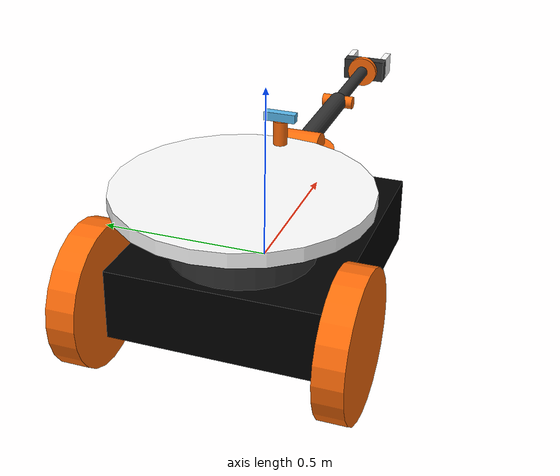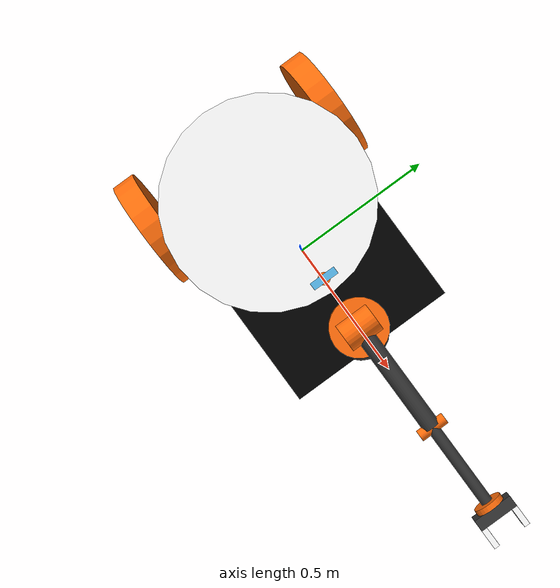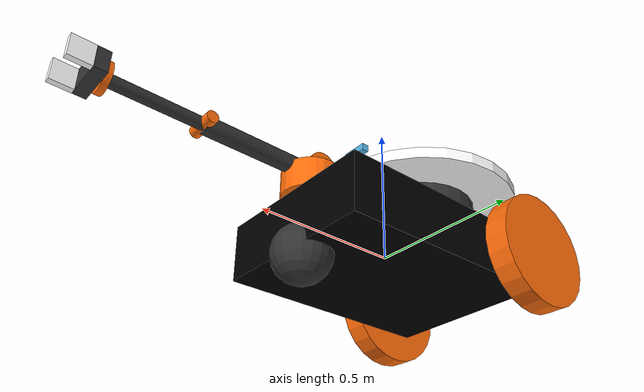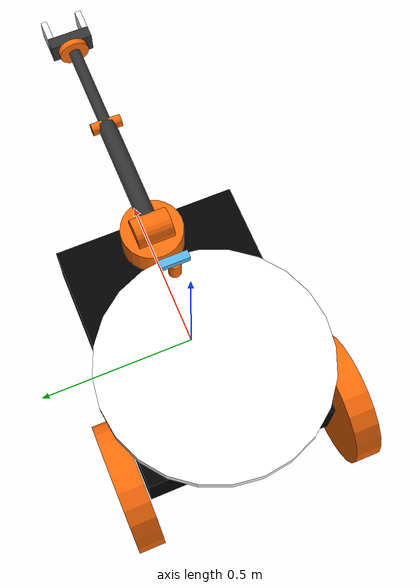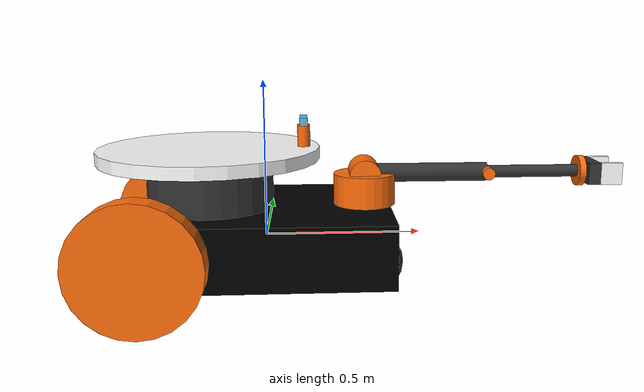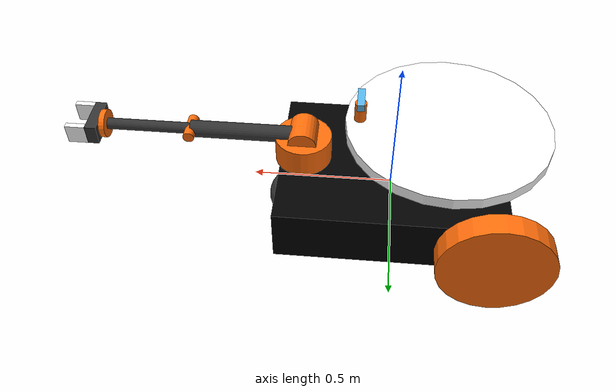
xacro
<?xml version="1.0"?>

<robot name="triwheeler" xmlns:xacro="https://www.ros.org/wiki/xacro" >

    <!-- Included URDF Files -->
    <xacro:include filename="$(find simbot_description)/urdf/triwheeler.urdf.xacro" />

    <!-- Instantiate triwheeler_base_macro once (has no parameters atm) -->
    <xacro:triwheeler_base_macro />

    <!-- RGB-D camera -->
    <xacro:include filename="$(find simbot_description)/urdf/rgbd_camera.urdf.xacro" />
    <xacro:rgbd_camera parent="plate">
        <origin xyz="${6*plate_r/7} 0.0 ${plate_l/2+holder_l/2}" rpy="0 0 0"/>
    </xacro:rgbd_camera>

    <xacro:include filename="$(find simbot_description)/urdf/manipulator.urdf.xacro" />
    <xacro:manipulator parent="chassis">
        <origin xyz="${2*chassis_x/5} 0.0 ${chassis_z/2+shoulder_0_l/2}" rpy="0 0 0"/>
    </xacro:manipulator>

</robot>

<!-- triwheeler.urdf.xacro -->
<robot xmlns:xacro="https://www.ros.org/wiki/xacro" >

    <!-- constants for robot dimensions -->
    <xacro:property name="PI" value="3.1415926535897931"/>
    <!-- properties of chassis link -->
    <xacro:property name="chassis_x" value="0.8" />
    <xacro:property name="chassis_y" value="0.6" />
    <xacro:property name="chassis_z" value="0.2" />
    <xacro:property name="chassis_m" value="4" />
    <!-- properties of plate link -->
    <xacro:property name="plate_r" value="0.35"/>
    <xacro:property name="plate_l" value="0.04"/>
    <xacro:property name="plate_m" value="0.2"/>
    <!-- properties of plate support link -->
    <xacro:property name="support_r" value="0.2"/>
    <xacro:property name="support_l" value="0.15"/>
    <xacro:property name="support_m" value="0.8"/>
    <!-- properties of link_caster -->
    <xacro:property name="caster_r" value="0.1"/>
    <xacro:property name="caster_m" value="0.1"/>
    <!-- properties of wheel -->
    <xacro:property name="wheel_r" value="0.2"/>
    <xacro:property name="wheel_l" value="0.08"/>
    <xacro:property name="wheel_m" value="0.5"/>
    <!-- wheel mounting positions -->
    <xacro:property name="wheelbase" value="0.7" />
    <xacro:property name="track" value="0.7" />

    <!-- import all gazebo-customization elements, including gazebo colors -->
    <!-- import rviz colors -->
    <xacro:include filename="$(find simbot_description)/urdf/materials.urdf.xacro" />

    <!-- main triwheeler link -->
    <xacro:macro name="triwheeler_base_macro">
        <!-- chassis is the center of the robot's bottom plate -->
        <link name="chassis">
            <visual>
                <origin xyz="0 0 0" rpy="0 0 0" />
                <geometry>
                    <box size="${chassis_x} ${chassis_y} ${chassis_z}"/> />
                </geometry>
                <material name="black"/>
            </visual>
            <collision>
                <origin xyz="0 0 0" rpy="0 0 0" />
                <geometry>
                    <box size="${chassis_x} ${chassis_y} ${chassis_z}"/> />
                </geometry>
            </collision>
        </link>
        <!-- kdl does not support a root link with an inertia, create a dummy link only contains inertia of base_link -->
        <joint name="chassis-chassis_inertial" type="fixed">
            <origin xyz="0 0 0" rpy="0 0 0" />
            <parent link="chassis" />
            <child link="chassis_inertial" />
        </joint>
        <link name="chassis_inertial">
            <inertial>
                <mass value="${chassis_m}"/>
                <origin rpy="0 0 0" xyz="0 0 0"/>
                <inertia ixx="${1/12*chassis_m*(chassis_y*chassis_y+chassis_z*chassis_z)}" ixy="0" ixz="0" iyy="${1/12*chassis_m*(chassis_z*chassis_z+chassis_x*chassis_x)}" iyz="0" izz="${1/12*chassis_m*(chassis_x*chassis_x+chassis_y*chassis_y)}"/>
            </inertial>
        </link>

        <!-- left wheel -->
        <joint name="$chassis-left_wheel" type="continuous">
            <origin xyz="-${wheelbase/2} ${track/2} 0" rpy="0 0 0" />
            <parent link="chassis"/>
            <child link="left_wheel"/>
            <axis xyz="0 1 0" rpy="0 0 0" />
        </joint>

        <link name="left_wheel">
            <visual>
                <origin rpy="${PI/2} 0 0" xyz="0 0 0"/>
                <geometry>
                    <cylinder length="${wheel_l}" radius="${wheel_r}"/>
                </geometry>
                <material name="orange"/>
            </visual>
            <collision>
                <origin rpy="${PI/2} 0 0" xyz="0 0 0" />
                <geometry>
                    <cylinder length="${wheel_l}" radius="${wheel_r}"/>
                </geometry>
            </collision>
            <inertial>
                <mass value="${wheel_m}"/>
                <origin rpy="${PI/2} 0 0" xyz="0 0 0"/>
                <inertia ixx="${1/12*wheel_m*(3*wheel_r*wheel_r+wheel_l*wheel_l)}" ixy="0" ixz="0" iyy="${1/12*wheel_m*(3*wheel_r*wheel_r+wheel_l*wheel_l)}" iyz="0" izz="${1/2*wheel_m*wheel_r*wheel_r}"/>
            </inertial>
        </link>

        <!-- right wheel -->
        <joint name="$chassis-right_wheel" type="continuous">
            <origin xyz="-${wheelbase/2} -${track/2} 0" rpy="0 0 0" />
            <parent link="chassis"/>
            <child link="right_wheel"/>
            <axis xyz="0 1 0" rpy="0 0 0" />
        </joint>

        <link name="right_wheel">
            <visual>
                <origin rpy="${PI/2} 0 0" xyz="0 0 0"/>
                <geometry>
                    <cylinder length="${wheel_l}" radius="${wheel_r}"/>
                </geometry>
                <material name="orange"/>
            </visual>
            <collision>
                <origin rpy="${PI/2} 0 0" xyz="0 0 0" />
                <geometry>
                    <cylinder length="${wheel_l}" radius="${wheel_r}"/>
                </geometry>
            </collision>
            <inertial>
                <mass value="${wheel_m}"/>
                <origin rpy="${PI/2} 0 0" xyz="0 0 0"/>
                <inertia ixx="${1/12*wheel_m*(3*wheel_r*wheel_r+wheel_l*wheel_l)}" ixy="0" ixz="0" iyy="${1/12*wheel_m*(3*wheel_r*wheel_r+wheel_l*wheel_l)}" iyz="0" izz="${1/2*wheel_m*wheel_r*wheel_r}"/>
            </inertial>
        </link>

        <!-- caster ball -->
        <joint name="joint_chassis_caster" type="fixed">
            <origin rpy="0 0 0" xyz="${wheelbase/2} 0 -${chassis_z/2}"/>
            <parent link="chassis"/>
            <child link="caster"/>
        </joint>

        <link name="caster">
            <visual>
                <origin rpy="0 0 0" xyz="0 0 0"/>
                <geometry>
                    <sphere radius="${caster_r}"/>
                </geometry>
                <material name="grey"/>
            </visual>
            <collision>
                <origin rpy=" 0 0 0" xyz="0 0 0"/>
                <geometry>
                    <sphere radius="${caster_r}"/>
                </geometry>
            </collision>
            <inertial>
                <mass value="${caster_m}"/>
                <origin rpy="0 0 0" xyz="0 0 0"/>
                <inertia ixx="${2/5*caster_m*caster_r*caster_r}" ixy="0" ixz="0" iyy="${2/5*caster_m*caster_r*caster_r}" iyz="0" izz="${2/5*caster_m*caster_r*caster_r}"/>
            </inertial>
        </link>

        <joint name="chassis-support" type="fixed">
            <origin rpy="0 0 0" xyz="-${wheelbase/4} 0 ${chassis_z/2+support_l/2}"/>
            <parent link="chassis"/>
            <child link="support"/>
        </joint>

        <link name="support">
            <visual>
                <origin rpy="0 0 0" xyz="0 0 0"/>
                <geometry>
                    <cylinder length="${support_l}" radius="${support_r}"/>
                </geometry>
                <material name="grey"/>
            </visual>
            <collision>
                <origin rpy="0 0 0" xyz="0 0 0" />
                <geometry>
                    <cylinder length="${support_l}" radius="${support_r}"/>
                </geometry>
            </collision>
            <inertial>
                <mass value="${support_m}"/>
                <origin rpy="0 0 0" xyz="0 0 0"/>
                <inertia ixx="${1/12*support_m*(3*support_r*support_r+support_l*support_l)}" ixy="0" ixz="0" iyy="${1/12*support_m*(3*support_r*support_r+support_l*support_l)}" iyz="0" izz="${1/2*support_m*support_r*support_r}"/>
            </inertial>
        </link>

        <joint name="support-plate" type="revolute">
            <origin rpy="0 0 0" xyz="0 0 ${support_l/2+plate_l/2}"/>
            <parent link="support"/>
            <child link="plate"/>
            <limit effort="0" lower="0" upper="0" velocity="0"/>
            <axis rpy="0 0 0" xyz="0 0 1"/>
        </joint>

        <link name="plate">
            <visual>
                <origin rpy="0 0 0" xyz="0 0 0"/>
                <geometry>
                    <cylinder length="${plate_l}" radius="${plate_r}"/>
                </geometry>
                <material name="white"/>
            </visual>
            <collision>
                <origin rpy="0 0 0" xyz="0 0 0" />
                <geometry>
                    <cylinder length="${plate_l}" radius="${plate_r}"/>
                </geometry>
            </collision>
            <inertial>
                <mass value="${plate_m}"/>
                <origin rpy="0 0 0" xyz="0 0 0"/>
                <inertia ixx="${1/12*plate_m*(3*plate_r*plate_r+plate_l*plate_l)}" ixy="0" ixz="0" iyy="${1/12*plate_m*(3*plate_r*plate_r+plate_l*plate_l)}" iyz="0" izz="${1/2*plate_m*plate_r*plate_r}"/>
            </inertial>
        </link>

        <joint name="chassis-imu" type="revolute">
            <origin rpy="0 0 0" xyz="${chassis_x/4} 0 ${chassis_z/2}"/>
            <parent link="chassis"/>
            <child link="imu"/>
            <limit lower="0" upper="0" effort="0" velocity="0"/>
            <axis xyz="0 0 1"/>
        </joint>
        <link name="imu"/>

        <transmission name="left_wheel-trans" type="simpletransmission">
            <type>transmission_interface/simpletransmission</type>
            <actuator name="left_wheel-motor">
                <mechanicalreduction>1</mechanicalreduction>
            </actuator>
            <joint name="chassis-left_wheel">
                <hardwareinterface>hardware_interface/velocityjointinterface</hardwareinterface>
            </joint>
        </transmission>

        <transmission name="right_wheel-trans" type="simpletransmission">
            <type>transmission_interface/simpletransmission</type>
            <actuator name="right_wheel-motor">
                <mechanicalreduction>1</mechanicalreduction>
            </actuator>
            <joint name="chassis-right_wheel">
                <hardwareinterface>hardware_interface/velocityjointinterface</hardwareinterface>
            </joint>
        </transmission>

        <gazebo reference="imu">
            <gravity>true</gravity>
            <sensor name="imu_sensor" type="imu">
                <always_on>true</always_on>
                <update_rate>100</update_rate>
                <visualize>true</visualize>
                <topic>__default_topic__</topic>
                <plugin filename="libgazebo_ros_imu_sensor.so" name="imu_plugin">
                    <topicName>imu</topicName>
                    <bodyName>imu_link</bodyName>
                    <updateRateHZ>10.0</updateRateHZ>
                    <gaussianNoise>0.0</gaussianNoise>
                    <xyzOffset>0 0 0</xyzOffset>
                    <rpyOffset>0 0 0</rpyOffset>
                    <frameName>imu_link</frameName>
                </plugin>
                <pose>0 0 0 0 0 0</pose>
            </sensor>
        </gazebo>

    </xacro:macro>

</robot>

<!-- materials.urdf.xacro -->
<robot>

  <material name="black">
    <color rgba="0.0 0.0 0.0 1.0"/>
  </material>

  <material name="blue">
    <color rgba="0.0 0.0 0.8 1.0"/>
  </material>

  <material name="green">
    <color rgba="0.0 0.8 0.0 1.0"/>
  </material>

  <material name="grey">
    <color rgba="0.2 0.2 0.2 1.0"/>
  </material>

  <material name="orange">
    <color rgba="${255/255} ${108/255} ${10/255} 1.0"/>
  </material>

  <material name="brown">
    <color rgba="${222/255} ${207/255} ${195/255} 1.0"/>
  </material>

  <material name="red">
    <color rgba="0.8 0.0 0.0 1.0"/>
  </material>

  <material name="white">
    <color rgba="1.0 1.0 1.0 1.0"/>
  </material>

  <material name="uc_red">
    <color rgba="${224/255} ${1/255} ${34/255} 1.0"/>
  </material>

  <material name="aluminum">
    <color rgba="0.5 0.5 0.5 1"/>
  </material>

</robot>

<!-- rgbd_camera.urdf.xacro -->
<robot xmlns:xacro="https://www.ros.org/wiki/xacro">
    <xacro:property name="M_PI" value="3.1415926535897931" />

    <xacro:property name="holder_mass" value="0.072"/>
    <xacro:property name="holder_r" value="0.02"/>
    <xacro:property name="holder_l" value="0.07"/>

    <xacro:property name="camera_width" value="0.09"/>
    <xacro:property name="camera_height" value="0.025"/>
    <xacro:property name="camera_depth" value="0.025"/>
    <xacro:property name="camera_mass" value="0.072"/>

    <xacro:macro name="rgbd_camera" params="parent *origin">
        <joint name="${parent}-camera_holder" type="revolute">
            <xacro:insert_block name="origin" />
            <parent link="${parent}"/>
            <child link="camera_holder"/>
            <limit lower="${-M_PI/4}" upper="${M_PI/4}" effort="50" velocity="${M_PI}"/>
            <axis xyz="0 0 1"/>
        </joint>

        <link name="camera_holder">
            <visual>
                <origin rpy="0 0 0" xyz="0 0 0"/>
                <geometry>
                    <cylinder length="${holder_l}" radius="${holder_r}"/>
                </geometry>
                <material name="orange"/>
            </visual>
            <collision>
                <origin rpy="0 0 0" xyz="0 0 0" />
                <geometry>
                    <cylinder length="${holder_l}" radius="${holder_r}"/>
                </geometry>
            </collision>
            <inertial>
				<mass value="${holder_mass}" />
				<origin xyz="0 0 0" />
				<inertia ixx="${1/12*holder_mass*(3*holder_r*holder_r+holder_l*holder_l)}" ixy="0" ixz="0" iyy="${1/12*holder_mass*(3*holder_r*holder_r+holder_l*holder_l)}" iyz="0" izz="${1/2*holder_mass*holder_r*holder_r}"/>
			</inertial>
		</link>

        <joint name="camera_holder-camera_body" type="revolute">
            <origin rpy="0 0 0" xyz="0 0 ${holder_l/2+camera_height/2}"/>
            <parent link="camera_holder"/>
            <child link="camera_body"/>
            <limit lower="${-M_PI/6}" upper="${M_PI/12}" effort="50" velocity="${M_PI}"/>
            <axis xyz="0 1 0"/>
        </joint>

        <link name="camera_body">
			<visual>
				<origin xyz="0 0 0" rpy="0 0 0" />
				<geometry>
					<box size="${camera_depth} ${camera_width} ${camera_height}" />
				</geometry>
                <color rgba="0.5 0.5 0.5 1"/>
			</visual>
			<collision>
				<origin xyz="0 0 0" rpy="0 0 0" />
				<geometry>
                    <box size="${camera_depth} ${camera_width} ${camera_height}" />
				</geometry>
			</collision>
            <inertial>
				<mass value="${camera_mass}" />
				<origin xyz="0 0 0" />
				<inertia ixx="5.8083e-4" ixy="0" ixz="0" iyy="3.0833e-5" iyz="0" izz="5.9083e-4" />
			</inertial>
		</link>

        <joint name="camera_body-depth_frame" type="fixed">
            <origin xyz="${camera_depth/2} 0.0175 0.0" rpy="${-M_PI/2} 0 ${-M_PI/2}" />
            <parent link="camera_body" />
            <child link="camera_depth_frame"/>
        </joint>

        <link name="camera_depth_frame"/>

        <joint name="camera_body-depth_optical" type="fixed">
            <origin xyz="${camera_depth/2} 0.0175 0" rpy="0 0 0" />
            <parent link="camera_body" />
            <child link="camera_depth_optical"/>
        </joint>

        <link name="camera_depth_optical"/>

        <gazebo reference="camera_depth_optical">
            <sensor type="depth" name="camera">
                <update_rate>30</update_rate>
                <camera>
                    <horizontal_fov>${69.4 * M_PI/180.0}</horizontal_fov>
                    <image>
                        <format>B8G8R8</format>
                        <width>640</width>
                        <height>480</height>
                    </image>
                    <clip>
                        <near>0.3</near>
                        <far>10</far>
                    </clip>
                </camera>
                <plugin name="camera_controller" filename="libgazebo_ros_openni_kinect.so">
                    <cameraName>camera</cameraName>
                    <imageTopicName>/camera/color/image_raw</imageTopicName>
                    <cameraInfoTopicName>/camera/color/camera_info</cameraInfoTopicName>
                    <depthImageTopicName>/camera/depth/image_raw</depthImageTopicName>
                    <depthImageInfoTopicName>/camera/depth/camera_info</depthImageInfoTopicName>
                    <pointCloudTopicName>/camera/depth/points</pointCloudTopicName>
                    <frameName>camera</frameName>
                </plugin>
            </sensor>
        </gazebo>

    </xacro:macro>

</robot>

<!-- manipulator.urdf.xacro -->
<robot xmlns:xacro="https://www.ros.org/wiki/xacro">
    <xacro:property name="M_PI" value="3.1415926535897931" />

    <xacro:property name="shoulder_0_mass" value="2"/>
    <xacro:property name="shoulder_0_r" value="0.1"/>
    <xacro:property name="shoulder_0_l" value="0.1"/>

    <xacro:property name="shoulder_1_mass" value="0.4"/>
    <xacro:property name="shoulder_1_r" value="0.05"/>
    <xacro:property name="shoulder_1_l" value="0.12"/>

    <xacro:property name="upper_arm_mass" value="0.2"/>
    <xacro:property name="upper_arm_r" value="0.03"/>
    <xacro:property name="upper_arm_l" value="0.4"/>

    <xacro:property name="elbow_mass" value="0.2"/>
    <xacro:property name="elbow_r" value="0.02"/>
    <xacro:property name="elbow_l" value="0.1"/>

    <xacro:property name="lower_arm_mass" value="0.1"/>
    <xacro:property name="lower_arm_r" value="0.02"/>
    <xacro:property name="lower_arm_l" value="0.3"/>

    <xacro:property name="wrist_mass" value="0.1"/>
    <xacro:property name="wrist_r" value="0.05"/>
    <xacro:property name="wrist_l" value="0.02"/>

    <xacro:property name="gripper_mass" value="0.2"/>
    <xacro:property name="gripper_x" value="0.14"/>
    <xacro:property name="gripper_y" value="0.07"/>
    <xacro:property name="gripper_z" value="0.04"/>

    <xacro:property name="finger_mass" value="0.02"/>
    <xacro:property name="finger_x" value="0.02"/>
    <xacro:property name="finger_y" value="0.07"/>
    <xacro:property name="finger_z" value="0.07"/>

    <xacro:macro name="manipulator" params="parent name:=manipulator *origin">
        <joint name="${parent}-${name}_shoulder_0" type="revolute">
            <xacro:insert_block name="origin" />
            <parent link="${parent}"/>
            <child link="${name}_shoulder_0"/>
            <limit lower="${-19*M_PI/20}" upper="${19*M_PI/20}" effort="50" velocity="${M_PI}"/>
            <axis xyz="0 0 1"/>
        </joint>

        <link name="${name}_shoulder_0">
            <visual>
                <origin rpy="0 0 0" xyz="0 0 0"/>
                <geometry>
                    <cylinder length="${shoulder_0_l}" radius="${shoulder_0_r}"/>
                </geometry>
                <material name="orange"/>
            </visual>
            <collision>
                <origin rpy="0 0 0" xyz="0 0 0" />
                <geometry>
                    <cylinder length="${shoulder_0_l}" radius="${shoulder_0_r}"/>
                </geometry>
            </collision>
            <inertial>
				<mass value="${shoulder_0_mass}" />
				<origin xyz="0 0 0" />
				<inertia ixx="${1/12*shoulder_0_mass*(3*shoulder_0_r*shoulder_0_r+shoulder_0_l*shoulder_0_l)}" ixy="0" ixz="0" iyy="${1/12*shoulder_0_mass*(3*shoulder_0_r*shoulder_0_r+shoulder_0_l*shoulder_0_l)}" iyz="0" izz="${1/2*shoulder_0_mass*shoulder_0_r*shoulder_0_r}"/>
			</inertial>
		</link>

        <joint name="${name}_shoulder_0-${name}_shoulder_1" type="revolute">
            <origin rpy="${-M_PI/2} 0 0" xyz="0 0 ${shoulder_0_l/2}"/>
            <parent link="${name}_shoulder_0"/>
            <child link="${name}_shoulder_1"/>
            <limit lower="${-7*M_PI/12}" upper="${M_PI/12}" effort="50" velocity="${M_PI}"/>
            <axis xyz="0 0 1"/>
        </joint>

        <link name="${name}_shoulder_1">
            <visual>
                <origin rpy="0 0 0" xyz="0 0 0"/>
                <geometry>
                    <cylinder length="${shoulder_1_l}" radius="${shoulder_1_r}"/>
                </geometry>
                <material name="orange"/>
            </visual>
            <collision>
                <origin rpy="0 0 0" xyz="0 0 0" />
                <geometry>
                    <cylinder length="${shoulder_1_l}" radius="${shoulder_1_r}"/>
                </geometry>
            </collision>
            <inertial>
				<mass value="${shoulder_1_mass}" />
				<origin xyz="0 0 0" />
				<inertia ixx="${1/12*shoulder_1_mass*(3*shoulder_1_r*shoulder_1_r+shoulder_1_l*shoulder_1_l)}" ixy="0" ixz="0" iyy="${1/12*shoulder_1_mass*(3*shoulder_1_r*shoulder_1_r+shoulder_1_l*shoulder_1_l)}" iyz="0" izz="${1/2*shoulder_1_mass*shoulder_1_r*shoulder_1_r}"/>
			</inertial>
		</link>

        <joint name="${name}_shoulder_1-${name}_upper_arm" type="revolute">
            <origin rpy="0 ${-M_PI/2} 0" xyz="${upper_arm_l/2} 0 0"/>
            <parent link="${name}_shoulder_1"/>
            <child link="${name}_upper_arm"/>
            <limit lower="0" upper="0" effort="0" velocity="0"/>
            <axis xyz="1 0 0"/>
        </joint>

        <link name="${name}_upper_arm">
            <visual>
                <origin rpy="0 0 0" xyz="0 0 0"/>
                <geometry>
                    <cylinder length="${upper_arm_l}" radius="${upper_arm_r}"/>
                </geometry>
                <material name="grey"/>
            </visual>
            <collision>
                <origin rpy="0 0 0" xyz="0 0 0" />
                <geometry>
                    <cylinder length="${upper_arm_l}" radius="${upper_arm_r}"/>
                </geometry>
            </collision>
            <inertial>
				<mass value="${upper_arm_mass}" />
				<origin xyz="0 0 0" />
				<inertia ixx="${1/12*upper_arm_mass*(3*upper_arm_r*upper_arm_r+upper_arm_l*upper_arm_l)}" ixy="0" ixz="0" iyy="${1/12*upper_arm_mass*(3*upper_arm_r*upper_arm_r+upper_arm_l*upper_arm_l)}" iyz="0" izz="${1/2*upper_arm_mass*upper_arm_r*upper_arm_r}"/>
			</inertial>
		</link>

        <joint name="${name}_upper_arm-${name}_elbow" type="revolute">
            <origin rpy="0 ${-M_PI/2} 0" xyz="0 0 ${-upper_arm_l/2} "/>
            <parent link="${name}_upper_arm"/>
            <child link="${name}_elbow"/>
            <limit lower="${-3*M_PI/5}" upper="${3*M_PI/5}" effort="50" velocity="${M_PI}"/>
            <axis xyz="0 0 1"/>
        </joint>

        <link name="${name}_elbow">
            <visual>
                <origin rpy="0 0 0" xyz="0 0 0"/>
                <geometry>
                    <cylinder length="${elbow_l}" radius="${elbow_r}"/>
                </geometry>
                <material name="orange"/>
            </visual>
            <collision>
                <origin rpy="0 0 0" xyz="0 0 0" />
                <geometry>
                    <cylinder length="${elbow_l}" radius="${elbow_r}"/>
                </geometry>
            </collision>
            <inertial>
				<mass value="${elbow_mass}" />
				<origin xyz="0 0 0" />
				<inertia ixx="${1/12*elbow_mass*(3*elbow_r*elbow_r+elbow_l*elbow_l)}" ixy="0" ixz="0" iyy="${1/12*elbow_mass*(3*elbow_r*elbow_r+elbow_l*elbow_l)}" iyz="0" izz="${1/2*elbow_mass*elbow_r*elbow_r}"/>
			</inertial>
		</link>

        <joint name="${name}_elbow-${name}_lower_arm" type="revolute">
            <origin rpy="0 ${-M_PI/2} 0" xyz="${-lower_arm_l/2} 0 0"/>
            <parent link="${name}_elbow"/>
            <child link="${name}_lower_arm"/>
            <limit lower="0" upper="0" effort="0" velocity="0"/>
            <axis xyz="0 0 1"/>
        </joint>

        <link name="${name}_lower_arm">
            <visual>
                <origin rpy="0 0 0" xyz="0 0 0"/>
                <geometry>
                    <cylinder length="${lower_arm_l}" radius="${lower_arm_r}"/>
                </geometry>
                <material name="grey"/>
            </visual>
            <collision>
                <origin rpy="0 0 0" xyz="0 0 0" />
                <geometry>
                    <cylinder length="${lower_arm_l}" radius="${lower_arm_r}"/>
                </geometry>
            </collision>
            <inertial>
				<mass value="${lower_arm_mass}" />
				<origin xyz="0 0 0" />
				<inertia ixx="${1/12*lower_arm_mass*(3*lower_arm_r*lower_arm_r+lower_arm_l*lower_arm_l)}" ixy="0" ixz="0" iyy="${1/12*lower_arm_mass*(3*lower_arm_r*lower_arm_r+lower_arm_l*lower_arm_l)}" iyz="0" izz="${1/2*lower_arm_mass*lower_arm_r*lower_arm_r}"/>
			</inertial>
		</link>

        <joint name="${name}_lower_arm-${name}_wrist" type="revolute">
            <origin rpy="0 0 0" xyz="0 0 ${lower_arm_l/2+wrist_l/2}"/>
            <parent link="${name}_lower_arm"/>
            <child link="${name}_wrist"/>
            <limit lower="${-19*M_PI/20}" upper="${19*M_PI/20}" effort="50" velocity="${M_PI}"/>
            <axis xyz="0 0 1"/>
        </joint>

        <link name="${name}_wrist">
            <visual>
                <origin rpy="0 0 0" xyz="0 0 0"/>
                <geometry>
                    <cylinder length="${wrist_l}" radius="${wrist_r}"/>
                </geometry>
                <material name="orange"/>
            </visual>
            <collision>
                <origin rpy="0 0 0" xyz="0 0 0" />
                <geometry>
                    <cylinder length="${wrist_l}" radius="${wrist_r}"/>
                </geometry>
            </collision>
            <inertial>
				<mass value="${wrist_mass}" />
				<origin xyz="0 0 0" />
				<inertia ixx="${1/12*wrist_mass*(3*wrist_r*wrist_r+wrist_l*wrist_l)}" ixy="0" ixz="0" iyy="${1/12*wrist_mass*(3*wrist_r*wrist_r+wrist_l*wrist_l)}" iyz="0" izz="${1/2*wrist_mass*wrist_r*wrist_r}"/>
			</inertial>
		</link>

        <joint name="${name}_wrist-${name}_gripper" type="revolute">
            <origin rpy="0 0 0" xyz="0 0 ${wrist_l/2+gripper_z/2}"/>
            <parent link="${name}_wrist"/>
            <child link="${name}_gripper"/>
            <limit lower="0" upper="0" effort="0" velocity="0"/>
            <axis xyz="0 0 1"/>
        </joint>

        <link name="${name}_gripper">
            <visual>
                <origin xyz="0 0 0" rpy="0 0 0" />
                <geometry>
                    <box size="${gripper_x} ${gripper_y} ${gripper_z}"/> />
                </geometry>
                <material name="grey"/>
            </visual>
            <collision>
                <origin xyz="0 0 0" rpy="0 0 0" />
                <geometry>
                    <box size="${gripper_x} ${gripper_y} ${gripper_z}"/> />
                </geometry>
            </collision>
            <inertial>
				<mass value="${gripper_mass}" />
				<origin xyz="0 0 0" />
                <inertia ixx="${1/12*gripper_mass*(gripper_y*gripper_y+gripper_z*gripper_z)}" ixy="0" ixz="0" iyy="${1/12*gripper_mass*(gripper_z*gripper_z+gripper_x*gripper_x)}" iyz="0" izz="${1/12*gripper_mass*(gripper_x*gripper_x+gripper_y*gripper_y)}"/>
            </inertial>
		</link>

        <joint name="${name}_gripper-${name}_left_finger" type="prismatic">
            <origin rpy="0 0 0" xyz="${-gripper_x/2+finger_x/2} 0 ${gripper_z/2+finger_z/2}"/>
            <parent link="${name}_gripper"/>
            <child link="${name}_left_finger"/>
            <limit lower="0" upper="${gripper_x/2-finger_x}" effort="70" velocity="2"/>
            <axis xyz="1 0 0"/>
        </joint>

        <link name="${name}_left_finger">
            <visual>
                <origin xyz="0 0 0" rpy="0 0 0" />
                <geometry>
                    <box size="${finger_x} ${finger_y} ${finger_z}"/> />
                </geometry>
                <material name="white"/>
            </visual>
            <collision>
                <origin xyz="0 0 0" rpy="0 0 0" />
                <geometry>
                    <box size="${finger_x} ${finger_y} ${finger_z}"/> />
                </geometry>
            </collision>
            <inertial>
				<mass value="${finger_mass}" />
				<origin xyz="0 0 0" />
                <inertia ixx="${1/12*finger_mass*(finger_y*finger_y+finger_z*finger_z)}" ixy="0" ixz="0" iyy="${1/12*finger_mass*(finger_z*finger_z+finger_x*finger_x)}" iyz="0" izz="${1/12*finger_mass*(finger_x*finger_x+finger_y*finger_y)}"/>
            </inertial>
		</link>

        <joint name="${name}_gripper-${name}_right_finger" type="prismatic">
            <origin rpy="0 0 0" xyz="${gripper_x/2-finger_x/2} 0 ${gripper_z/2+finger_z/2}"/>
            <parent link="${name}_gripper"/>
            <child link="${name}_right_finger"/>
            <limit lower="${-gripper_x/2+finger_x}" upper="0" effort="70" velocity="2"/>
            <axis xyz="1 0 0"/>
        </joint>

        <link name="${name}_right_finger">
            <visual>
                <origin xyz="0 0 0" rpy="0 0 0" />
                <geometry>
                    <box size="${finger_x} ${finger_y} ${finger_z}"/> />
                </geometry>
                <material name="white"/>
            </visual>
            <collision>
                <origin xyz="0 0 0" rpy="0 0 0" />
                <geometry>
                    <box size="${finger_x} ${finger_y} ${finger_z}"/> />
                </geometry>
            </collision>
            <inertial>
				<mass value="${finger_mass}" />
				<origin xyz="0 0 0" />
                <inertia ixx="${1/12*finger_mass*(finger_y*finger_y+finger_z*finger_z)}" ixy="0" ixz="0" iyy="${1/12*finger_mass*(finger_z*finger_z+finger_x*finger_x)}" iyz="0" izz="${1/12*finger_mass*(finger_x*finger_x+finger_y*finger_y)}"/>
            </inertial>
		</link>

    </xacro:macro>

</robot>
